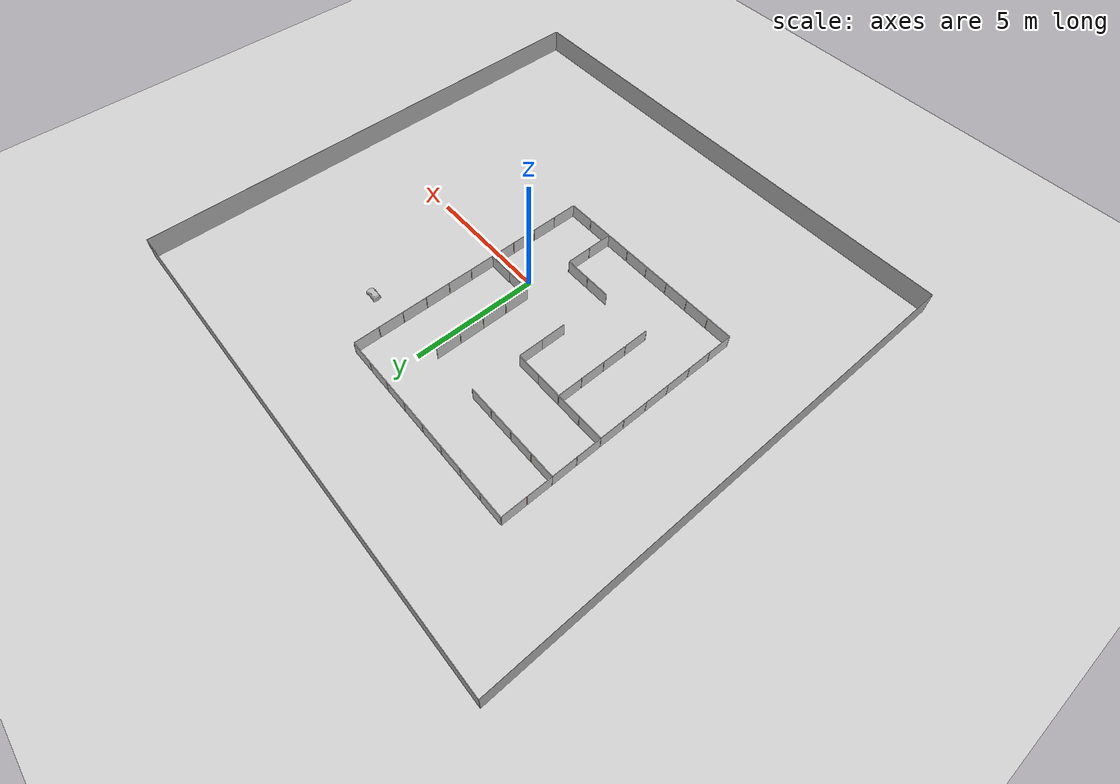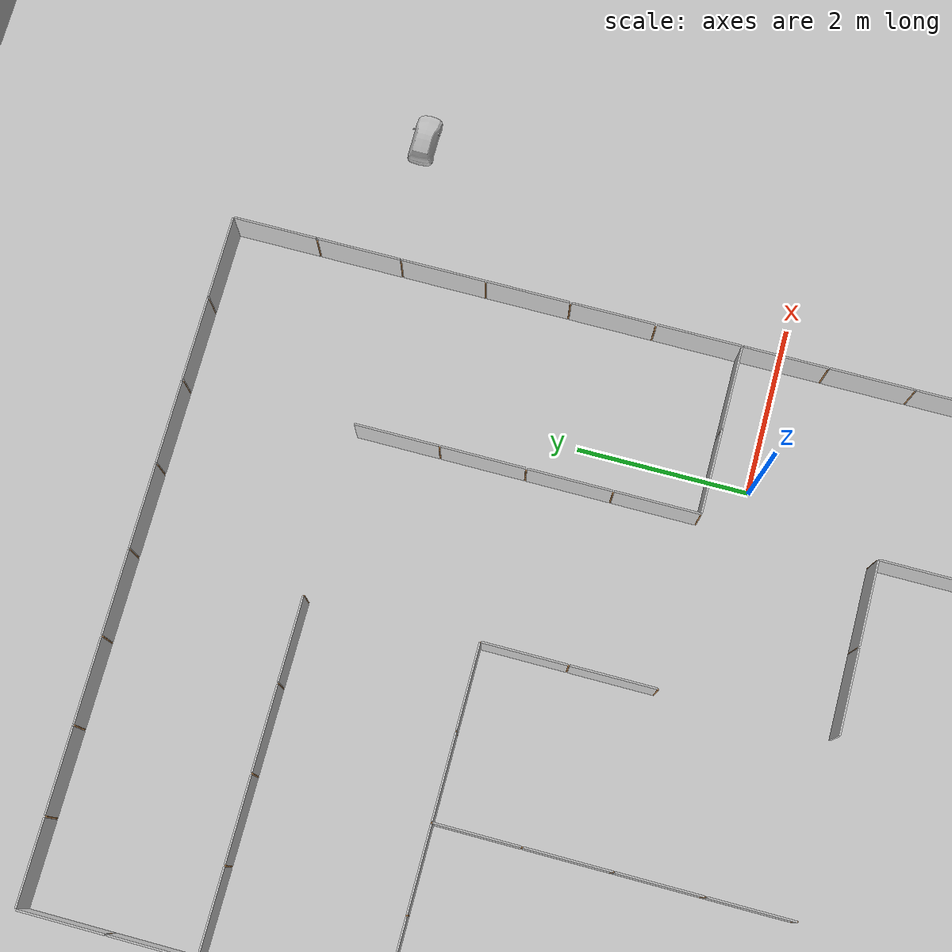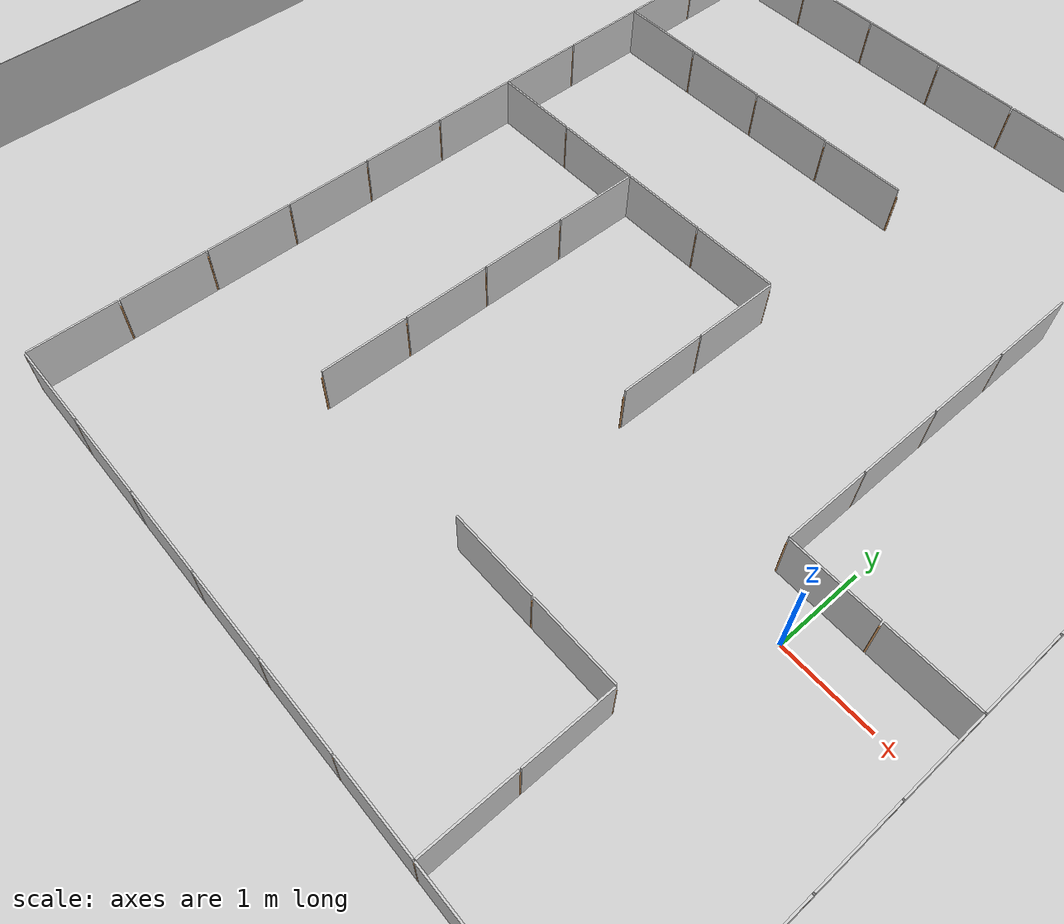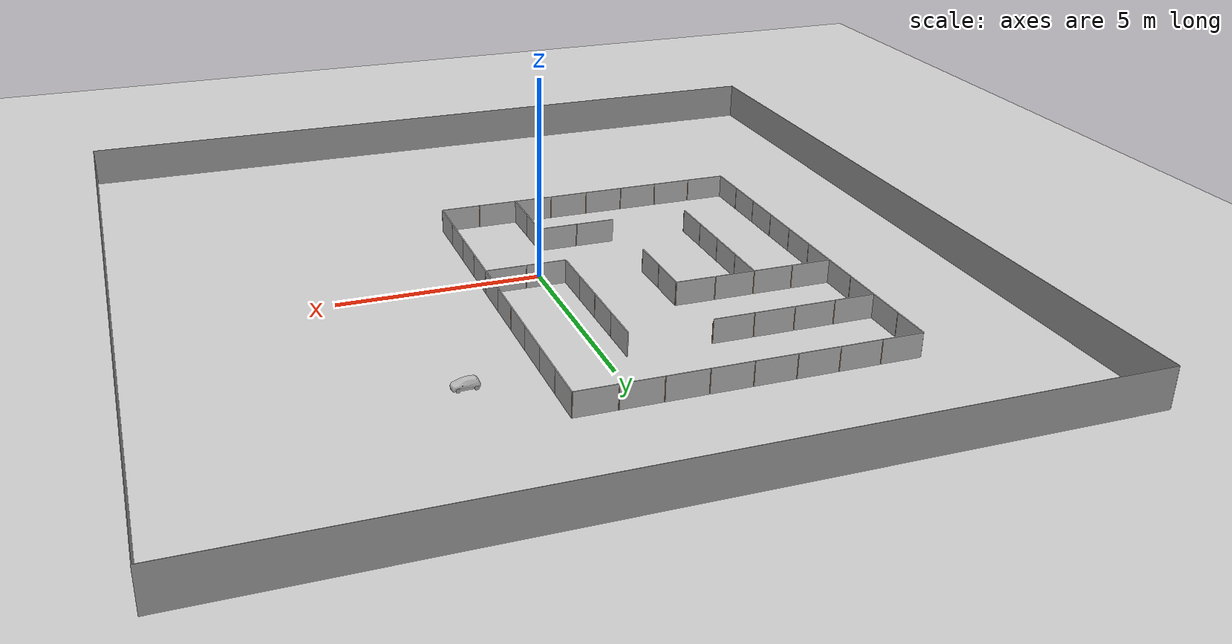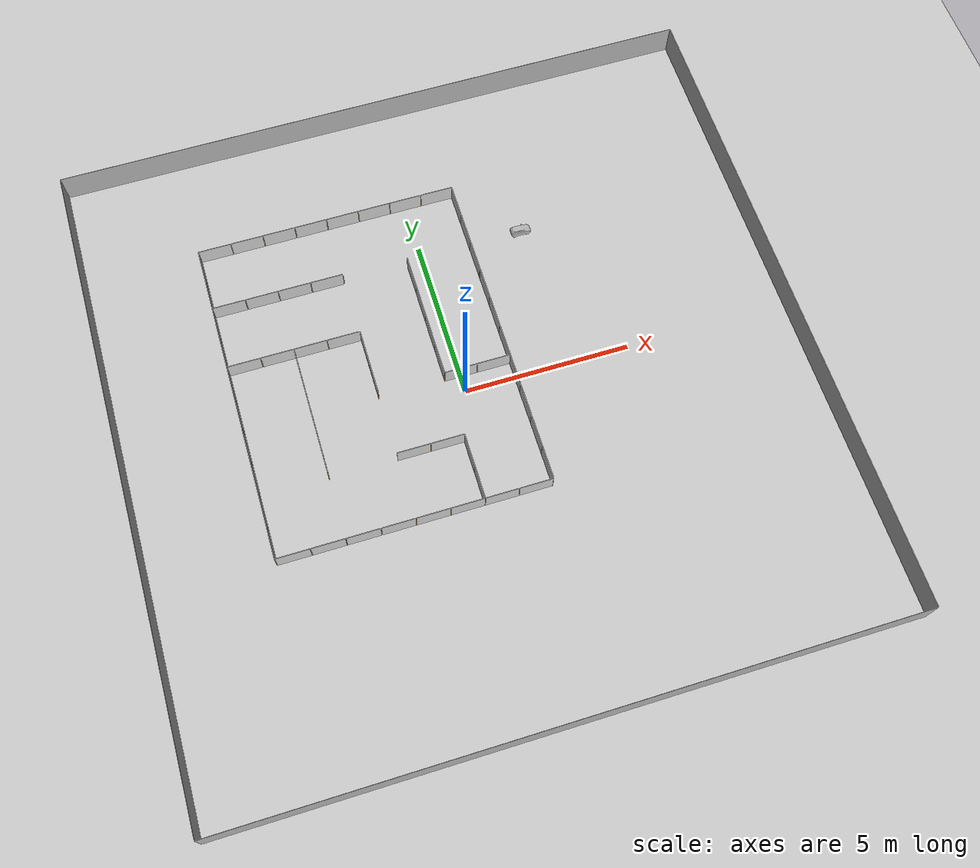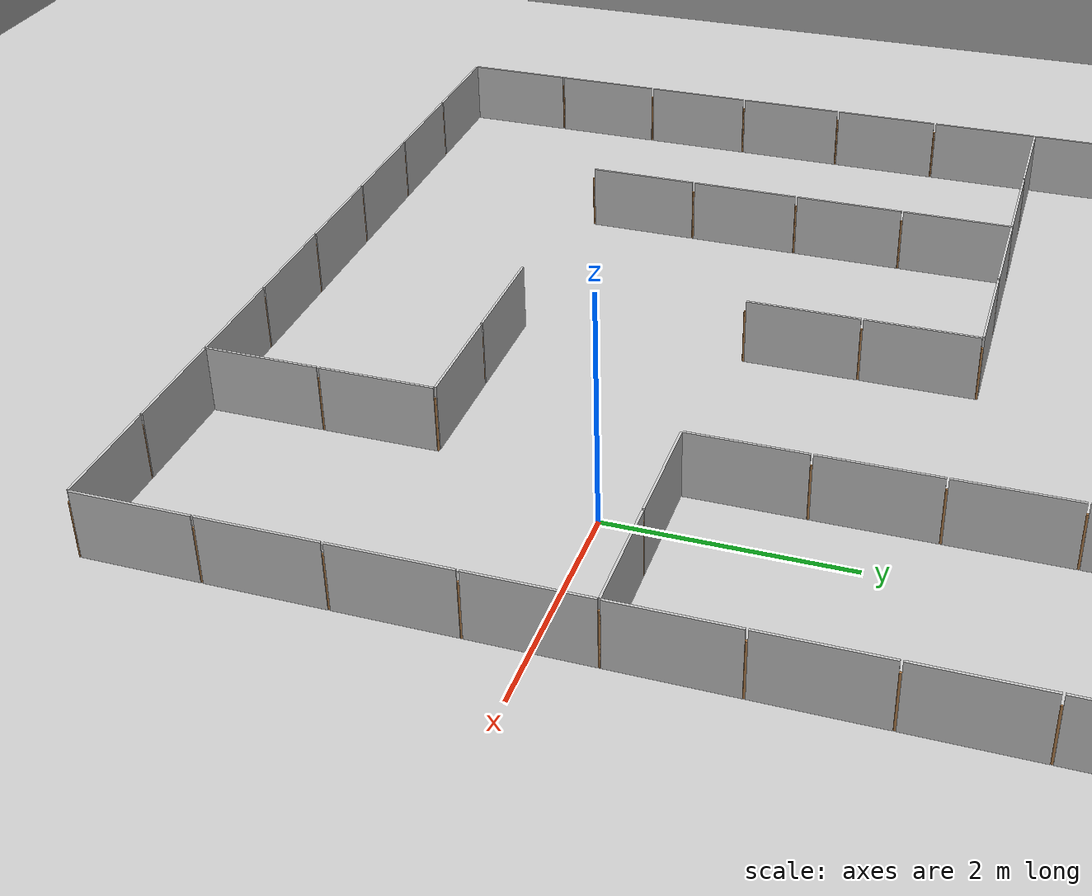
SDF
<sdf version="1.10">
 <world name="default">
  <physics type="ode">
   <max_step_size>0.0040000000000000001</max_step_size>
   <real_time_factor>1</real_time_factor>
   <real_time_update_rate>250</real_time_update_rate>
  </physics>
  <plugin name="gz::sim::systems::Physics" filename="gz-sim-physics-system"/>
  <plugin name="gz::sim::systems::UserCommands" filename="gz-sim-user-commands-system"/>
  <plugin name="gz::sim::systems::SceneBroadcaster" filename="gz-sim-scene-broadcaster-system"/>
  <plugin name="gz::sim::systems::Contact" filename="gz-sim-contact-system"/>
  <plugin name="gz::sim::systems::Imu" filename="gz-sim-imu-system"/>
  <plugin name="gz::sim::systems::Magnetometer" filename="gz-sim-magnetometer-system"/>
  <plugin name="gz::sim::systems::Altimeter" filename="gz-sim-altimeter-system"/>
  <plugin name="gz::sim::systems::NavSat" filename="gz-sim-navsat-system"/>
  <plugin name="gz::sim::systems::Sensors" filename="gz-sim-sensors-system">
   <render_engine>ogre2</render_engine>
  </plugin>
  <gravity>0 0 -9.8000000000000007</gravity>
  <magnetic_field>6.0000000000000002e-06 2.3e-05 -4.1999999999999998e-05</magnetic_field>
  <atmosphere type="adiabatic"/>
  <spherical_coordinates>
   <surface_model>EARTH_WGS84</surface_model>
   <latitude_deg>39.79480109851339</latitude_deg>
   <longitude_deg>-84.08631702793322</longitude_deg>
   <elevation>265.2</elevation>
   <heading_deg>0</heading_deg>
  </spherical_coordinates>
  <scene>
   <grid>true</grid>
   <ambient>0.400000006 0.400000006 0.400000006 1</ambient>
   <background>0.699999988 0.699999988 0.699999988 1</background>
   <shadows>false</shadows>
  </scene>
  <light name="sunUTC" type="directional">
   <pose>0 0 500 0 0 0</pose>
   <cast_shadows>false</cast_shadows>
   <intensity>1</intensity>
   <direction>0.001 0.625 -0.78000000000000003</direction>
   <diffuse>0.903999984 0.903999984 0.903999984 1</diffuse>
   <specular>0.270999998 0.270999998 0.270999998 1</specular>
   <attenuation><range>2000</range><linear>0</linear><constant>1</constant><quadratic>0</quadratic></attenuation>
   <spot><inner_angle>0</inner_angle><outer_angle>0</outer_angle><falloff>0</falloff></spot>
  </light>
  <model name="ground_plane">
   <static>true</static>
   <link name="link">
    <collision name="collision">
     <geometry><plane><normal>0 0 1</normal><size>1 1</size></plane></geometry>
    </collision>
    <visual name="visual">
     <geometry><plane><normal>0 0 1</normal><size>100 100</size></plane></geometry>
     <material>
      <ambient>0.800000012 0.800000012 0.800000012 1</ambient>
      <diffuse>0.800000012 0.800000012 0.800000012 1</diffuse>
      <specular>0.800000012 0.800000012 0.800000012 1</specular>
     </material>
    </visual>
    <inertial>
     <mass>1</mass>
     <inertia><ixx>1</ixx><ixy>0</ixy><ixz>0</ixz><iyy>1</iyy><iyz>0</iyz><izz>1</izz></inertia>
    </inertial>
   </link>
  </model>
  <model name="wall_1">
   <pose>-10 0 .5 0 0 -1.57</pose>
   <static>true</static>
   <link name="link">
    <collision name="collision"><geometry><box><size>20 .01 1</size></box></geometry></collision>
    <visual name="visual">
     <geometry><box><size>20 .01 1</size></box></geometry>
     <material>
      <ambient>0.7 0.7 0.7 1</ambient>
      <diffuse>0.7 0.7 0.7 1</diffuse>
      <specular>0.7 0.7 0.7 1</specular>
     </material>
    </visual>
    <inertial>
     <mass>1</mass>
     <inertia><ixx>1</ixx><ixy>0</ixy><ixz>0</ixz><iyy>1</iyy><iyz>0</iyz><izz>1</izz></inertia>
    </inertial>
   </link>
  </model>
  <model name="wall_2">
   <pose>10 0 .5 0 0 -1.57</pose>
   <static>true</static>
   <link name="link">
    <collision name="collision"><geometry><box><size>20 .01 1</size></box></geometry></collision>
    <visual name="visual">
     <geometry><box><size>20 .01 1</size></box></geometry>
     <material>
      <ambient>0.7 0.7 0.7 1</ambient>
      <diffuse>0.7 0.7 0.7 1</diffuse>
      <specular>0.7 0.7 0.7 1</specular>
     </material>
    </visual>
    <inertial>
     <mass>1</mass>
     <inertia><ixx>1</ixx><ixy>0</ixy><ixz>0</ixz><iyy>1</iyy><iyz>0</iyz><izz>1</izz></inertia>
    </inertial>
   </link>
  </model>
  <model name="wall_3">
   <pose>0 10 .5 0 0 0</pose>
   <static>true</static>
   <link name="link">
    <collision name="collision"><geometry><box><size>20 .01 1</size></box></geometry></collision>
    <visual name="visual">
     <geometry><box><size>20 .01 1</size></box></geometry>
     <material>
      <ambient>0.7 0.7 0.7 1</ambient>
      <diffuse>0.7 0.7 0.7 1</diffuse>
      <specular>0.7 0.7 0.7 1</specular>
     </material>
    </visual>
    <inertial>
     <mass>1</mass>
     <inertia><ixx>1</ixx><ixy>0</ixy><ixz>0</ixz><iyy>1</iyy><iyz>0</iyz><izz>1</izz></inertia>
    </inertial>
   </link>
  </model>
  <model name="wall_4">
   <pose>0 -10 .5 0 0 0</pose>
   <static>true</static>
   <link name="link">
    <collision name="collision"><geometry><box><size>20 .01 1</size></box></geometry></collision>
    <visual name="visual">
     <geometry><box><size>20 .01 1</size></box></geometry>
     <material>
      <ambient>0.7 0.7 0.7 1</ambient>
      <diffuse>0.7 0.7 0.7 1</diffuse>
      <specular>0.7 0.7 0.7 1</specular>
     </material>
    </visual>
    <inertial>
     <mass>1</mass>
     <inertia><ixx>1</ixx><ixy>0</ixy><ixz>0</ixz><iyy>1</iyy><iyz>0</iyz><izz>1</izz></inertia>
    </inertial>
   </link>
  </model>
  <include>
   <uri>/home/mayank/cognipilot/cranium/src/dream_world/models/maze_1_6x5</uri>
   <pose>-1.5 2.5 0 0 0 -1.57079632679</pose>
  </include>
  <include>
   <uri>/home/mayank/cognipilot/cranium/src/dream_world/models/hatchback_red</uri>
   <name>car_7</name>
   <pose>3.127710 4.690750 0 0 0 0</pose>
  </include>
 </world>
</sdf>

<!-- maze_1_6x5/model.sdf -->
<sdf version="1.5">
    <model name="maze_1_6x5">

        <include>
            <name>plywood_panel_0_0_b_1</name>
            <uri>/home/mayank/cognipilot/cranium/src/dream_world/models/plywood_panel</uri>
            <pose>-2 -2 0 0 0 0</pose>
        </include>
        <include>
            <name>wooden_joint_0_0_b_1</name>
            <uri>/home/mayank/cognipilot/cranium/src/dream_world/models/wooden_joint</uri>
            <pose>-2 -2 0 0 0 0</pose>
        </include>

        <include>
            <name>plywood_panel_0_0_b_2</name>
            <uri>/home/mayank/cognipilot/cranium/src/dream_world/models/plywood_panel</uri>
            <pose>-2 -3 0 0 0 0</pose>
        </include>
        <include>
            <name>wooden_joint_0_0_b_2</name>
            <uri>/home/mayank/cognipilot/cranium/src/dream_world/models/wooden_joint</uri>
            <pose>-2 -3 0 0 0 0</pose>
        </include>

        <include>
            <name>plywood_panel_0_0_b_3</name>
            <uri>/home/mayank/cognipilot/cranium/src/dream_world/models/plywood_panel</uri>
            <pose>-2 -4 0 0 0 0</pose>
        </include>
        <include>
            <name>wooden_joint_0_0_b_3</name>
            <uri>/home/mayank/cognipilot/cranium/src/dream_world/models/wooden_joint</uri>
            <pose>-2 -4 0 0 0 0</pose>
        </include>

        <include>
            <name>plywood_panel_0_0_b_4</name>
            <uri>/home/mayank/cognipilot/cranium/src/dream_world/models/plywood_panel</uri>
            <pose>0 -5 0 0 0 -1.5708</pose>
        </include>
        <include>
            <name>wooden_joint_0_0_b_4</name>
            <uri>/home/mayank/cognipilot/cranium/src/dream_world/models/wooden_joint</uri>
            <pose>0 -5 0 0 0 -1.5708</pose>
        </include>

        <include>
            <name>plywood_panel_0_0_b_5</name>
            <uri>/home/mayank/cognipilot/cranium/src/dream_world/models/plywood_panel</uri>
            <pose>1 -5 0 0 0 -1.5708</pose>
        </include>
        <include>
            <name>wooden_joint_0_0_b_5</name>
            <uri>/home/mayank/cognipilot/cranium/src/dream_world/models/wooden_joint</uri>
            <pose>1 -5 0 0 0 -1.5708</pose>
        </include>

        <include>
            <name>plywood_panel_0_0_b_6</name>
            <uri>/home/mayank/cognipilot/cranium/src/dream_world/models/plywood_panel</uri>
            <pose>2 -5 0 0 0 -1.5708</pose>
        </include>
        <include>
            <name>wooden_joint_0_0_b_6</name>
            <uri>/home/mayank/cognipilot/cranium/src/dream_world/models/wooden_joint</uri>
            <pose>2 -5 0 0 0 -1.5708</pose>
        </include>

        <include>
            <name>plywood_panel_0_0_b_7</name>
            <uri>/home/mayank/cognipilot/cranium/src/dream_world/models/plywood_panel</uri>
            <pose>-2 -5 0 0 0 -1.5708</pose>
        </include>
        <include>
            <name>wooden_joint_0_0_b_7</name>
            <uri>/home/mayank/cognipilot/cranium/src/dream_world/models/wooden_joint</uri>
            <pose>-2 -5 0 0 0 -1.5708</pose>
        </include>

        <include>
            <name>plywood_panel_0_0_b_8</name>
            <uri>/home/mayank/cognipilot/cranium/src/dream_world/models/plywood_panel</uri>
            <pose>-3 -5 0 0 0 -1.5708</pose>
        </include>
        <include>
            <name>wooden_joint_0_0_b_8</name>
            <uri>/home/mayank/cognipilot/cranium/src/dream_world/models/wooden_joint</uri>
            <pose>-3 -5 0 0 0 -1.5708</pose>
        </include>

        <include>
            <name>plywood_panel_0_0_b_9</name>
            <uri>/home/mayank/cognipilot/cranium/src/dream_world/models/plywood_panel</uri>
            <pose>3 -5 0 0 0 -1.5708</pose>
        </include>
        <include>
            <name>wooden_joint_0_0_b_9</name>
            <uri>/home/mayank/cognipilot/cranium/src/dream_world/models/wooden_joint</uri>
            <pose>3 -5 0 0 0 -1.5708</pose>
        </include>

        <include>
            <name>plywood_panel_0_0_b_10</name>
            <uri>/home/mayank/cognipilot/cranium/src/dream_world/models/plywood_panel</uri>
            <pose>0 -4 0 0 0 0</pose>
        </include>
        <include>
            <name>wooden_joint_0_0_b_10</name>
            <uri>/home/mayank/cognipilot/cranium/src/dream_world/models/wooden_joint</uri>
            <pose>0 -4 0 0 0 0</pose>
        </include>

        <include>
            <name>plywood_panel_0_0_b_11</name>
            <uri>/home/mayank/cognipilot/cranium/src/dream_world/models/plywood_panel</uri>
            <pose>0 -3 0 0 0 0</pose>
        </include>
        <include>
            <name>wooden_joint_0_0_b_11</name>
            <uri>/home/mayank/cognipilot/cranium/src/dream_world/models/wooden_joint</uri>
            <pose>0 -3 0 0 0 0</pose>
        </include>

        <include>
            <name>plywood_panel_0_0_b_12</name>
            <uri>/home/mayank/cognipilot/cranium/src/dream_world/models/plywood_panel</uri>
            <pose>0 -2 0 0 0 0</pose>
        </include>
        <include>
            <name>wooden_joint_0_0_b_12</name>
            <uri>/home/mayank/cognipilot/cranium/src/dream_world/models/wooden_joint</uri>
            <pose>0 -2 0 0 0 0</pose>
        </include>

        <include>
            <name>plywood_panel_0_0_b_13</name>
            <uri>/home/mayank/cognipilot/cranium/src/dream_world/models/plywood_panel</uri>
            <pose>1 -3 0 0 0 -1.5708</pose>
        </include>
        <include>
            <name>wooden_joint_0_0_b_13</name>
            <uri>/home/mayank/cognipilot/cranium/src/dream_world/models/wooden_joint</uri>
            <pose>1 -3 0 0 0 -1.5708</pose>
        </include>

        <include>
            <name>plywood_panel_0_0_b_14</name>
            <uri>/home/mayank/cognipilot/cranium/src/dream_world/models/plywood_panel</uri>
            <pose>2 -3 0 0 0 -1.5708</pose>
        </include>
        <include>
            <name>wooden_joint_0_0_b_14</name>
            <uri>/home/mayank/cognipilot/cranium/src/dream_world/models/wooden_joint</uri>
            <pose>2 -3 0 0 0 -1.5708</pose>
        </include>

        <include>
            <name>plywood_panel_0_0_b_15</name>
            <uri>/home/mayank/cognipilot/cranium/src/dream_world/models/plywood_panel</uri>
            <pose>3 -3 0 0 0 -1.5708</pose>
        </include>
        <include>
            <name>wooden_joint_0_0_b_15</name>
            <uri>/home/mayank/cognipilot/cranium/src/dream_world/models/wooden_joint</uri>
            <pose>3 -3 0 0 0 -1.5708</pose>
        </include>

        <include>
            <name>plywood_panel_0_0_b_16</name>
            <uri>/home/mayank/cognipilot/cranium/src/dream_world/models/plywood_panel</uri>
            <pose>4 -5 0 0 0 -1.5708</pose>
        </include>
        <include>
            <name>wooden_joint_0_0_b_16</name>
            <uri>/home/mayank/cognipilot/cranium/src/dream_world/models/wooden_joint</uri>
            <pose>4 -5 0 0 0 -1.5708</pose>
        </include>

        <include>
            <name>plywood_panel_0_0_b_17</name>
            <uri>/home/mayank/cognipilot/cranium/src/dream_world/models/plywood_panel</uri>
            <pose>5 -5 0 0 0 -1.5708</pose>
        </include>
        <include>
            <name>wooden_joint_0_0_b_17</name>
            <uri>/home/mayank/cognipilot/cranium/src/dream_world/models/wooden_joint</uri>
            <pose>5 -5 0 0 0 -1.5708</pose>
        </include>

        <include>
            <name>plywood_panel_0_0_b_18</name>
            <uri>/home/mayank/cognipilot/cranium/src/dream_world/models/plywood_panel</uri>
            <pose>6 -5 0 0 0 -1.5708</pose>
        </include>
        <include>
            <name>wooden_joint_0_0_b_18</name>
            <uri>/home/mayank/cognipilot/cranium/src/dream_world/models/wooden_joint</uri>
            <pose>6 -5 0 0 0 -1.5708</pose>
        </include>

        <include>
            <name>plywood_panel_0_0_b_19</name>
            <uri>/home/mayank/cognipilot/cranium/src/dream_world/models/plywood_panel</uri>
            <pose>0 1 0 0 0 -1.5708</pose>
        </include>
        <include>
            <name>wooden_joint_0_0_b_19</name>
            <uri>/home/mayank/cognipilot/cranium/src/dream_world/models/wooden_joint</uri>
            <pose>0 1 0 0 0 -1.5708</pose>
        </include>

        <include>
            <name>plywood_panel_0_0_b_20</name>
            <uri>/home/mayank/cognipilot/cranium/src/dream_world/models/plywood_panel</uri>
            <pose>1 -1 0 0 0 -1.5708</pose>
        </include>
        <include>
            <name>wooden_joint_0_0_b_20</name>
            <uri>/home/mayank/cognipilot/cranium/src/dream_world/models/wooden_joint</uri>
            <pose>1 -1 0 0 0 -1.5708</pose>
        </include>

        <include>
            <name>plywood_panel_0_0_b_21</name>
            <uri>/home/mayank/cognipilot/cranium/src/dream_world/models/plywood_panel</uri>
            <pose>2 -1 0 0 0 -1.5708</pose>
        </include>
        <include>
            <name>wooden_joint_0_0_b_21</name>
            <uri>/home/mayank/cognipilot/cranium/src/dream_world/models/wooden_joint</uri>
            <pose>2 -1 0 0 0 -1.5708</pose>
        </include>

        <include>
            <name>plywood_panel_0_0_b_22</name>
            <uri>/home/mayank/cognipilot/cranium/src/dream_world/models/plywood_panel</uri>
            <pose>4 -3 0 0 0 -1.5708</pose>
        </include>
        <include>
            <name>wooden_joint_0_0_b_22</name>
            <uri>/home/mayank/cognipilot/cranium/src/dream_world/models/wooden_joint</uri>
            <pose>4 -3 0 0 0 -1.5708</pose>
        </include>

        <include>
            <name>plywood_panel_0_0_b_23</name>
            <uri>/home/mayank/cognipilot/cranium/src/dream_world/models/plywood_panel</uri>
            <pose>-1 1 0 0 0 -1.5708</pose>
        </include>
        <include>
            <name>wooden_joint_0_0_b_23</name>
            <uri>/home/mayank/cognipilot/cranium/src/dream_world/models/wooden_joint</uri>
            <pose>-1 1 0 0 0 -1.5708</pose>
        </include>

        <include>
            <name>plywood_panel_0_0_b_24</name>
            <uri>/home/mayank/cognipilot/cranium/src/dream_world/models/plywood_panel</uri>
            <pose>-1 -5 0 0 0 -1.5708</pose>
        </include>
        <include>
            <name>wooden_joint_0_0_b_24</name>
            <uri>/home/mayank/cognipilot/cranium/src/dream_world/models/wooden_joint</uri>
            <pose>-1 -5 0 0 0 -1.5708</pose>
        </include>

        <include>
            <name>plywood_panel_0_0_b_25</name>
            <uri>/home/mayank/cognipilot/cranium/src/dream_world/models/plywood_panel</uri>
            <pose>1 1 0 0 0 -1.5708</pose>
        </include>
        <include>
            <name>wooden_joint_0_0_b_25</name>
            <uri>/home/mayank/cognipilot/cranium/src/dream_world/models/wooden_joint</uri>
            <pose>1 1 0 0 0 -1.5708</pose>
        </include>

        <include>
            <name>plywood_panel_0_0_b_26</name>
            <uri>/home/mayank/cognipilot/cranium/src/dream_world/models/plywood_panel</uri>
            <pose>-2 -1 0 0 0 0</pose>
        </include>
        <include>
            <name>wooden_joint_0_0_b_26</name>
            <uri>/home/mayank/cognipilot/cranium/src/dream_world/models/wooden_joint</uri>
            <pose>-2 -1 0 0 0 0</pose>
        </include>

        <include>
            <name>plywood_panel_0_0_b_27</name>
            <uri>/home/mayank/cognipilot/cranium/src/dream_world/models/plywood_panel</uri>
            <pose>6 -4 0 0 0 0</pose>
        </include>
        <include>
            <name>wooden_joint_0_0_b_27</name>
            <uri>/home/mayank/cognipilot/cranium/src/dream_world/models/wooden_joint</uri>
            <pose>6 -4 0 0 0 0</pose>
        </include>

        <include>
            <name>plywood_panel_0_0_b_28</name>
            <uri>/home/mayank/cognipilot/cranium/src/dream_world/models/plywood_panel</uri>
            <pose>6 -3 0 0 0 0</pose>
        </include>
        <include>
            <name>wooden_joint_0_0_b_28</name>
            <uri>/home/mayank/cognipilot/cranium/src/dream_world/models/wooden_joint</uri>
            <pose>6 -3 0 0 0 0</pose>
        </include>

        <include>
            <name>plywood_panel_0_0_b_29</name>
            <uri>/home/mayank/cognipilot/cranium/src/dream_world/models/plywood_panel</uri>
            <pose>6 -2 0 0 0 0</pose>
        </include>
        <include>
            <name>wooden_joint_0_0_b_29</name>
            <uri>/home/mayank/cognipilot/cranium/src/dream_world/models/wooden_joint</uri>
            <pose>6 -2 0 0 0 0</pose>
        </include>

        <include>
            <name>plywood_panel_0_0_b_30</name>
            <uri>/home/mayank/cognipilot/cranium/src/dream_world/models/plywood_panel</uri>
            <pose>6 -1 0 0 0 0</pose>
        </include>
        <include>
            <name>wooden_joint_0_0_b_30</name>
            <uri>/home/mayank/cognipilot/cranium/src/dream_world/models/wooden_joint</uri>
            <pose>6 -1 0 0 0 0</pose>
        </include>

        <include>
            <name>plywood_panel_0_0_b_31</name>
            <uri>/home/mayank/cognipilot/cranium/src/dream_world/models/plywood_panel</uri>
            <pose>6 0 0 0 0 0</pose>
        </include>
        <include>
            <name>wooden_joint_0_0_b_31</name>
            <uri>/home/mayank/cognipilot/cranium/src/dream_world/models/wooden_joint</uri>
            <pose>6 0 0 0 0 0</pose>
        </include>

        <include>
            <name>plywood_panel_0_0_b_32</name>
            <uri>/home/mayank/cognipilot/cranium/src/dream_world/models/plywood_panel</uri>
            <pose>6 1 0 0 0 0</pose>
        </include>
        <include>
            <name>wooden_joint_0_0_b_32</name>
            <uri>/home/mayank/cognipilot/cranium/src/dream_world/models/wooden_joint</uri>
            <pose>6 1 0 0 0 0</pose>
        </include>

        <include>
            <name>plywood_panel_0_0_b_33</name>
            <uri>/home/mayank/cognipilot/cranium/src/dream_world/models/plywood_panel</uri>
            <pose>-4 1 0 0 0 0</pose>
        </include>
        <include>
            <name>wooden_joint_0_0_b_33</name>
            <uri>/home/mayank/cognipilot/cranium/src/dream_world/models/wooden_joint</uri>
            <pose>-4 1 0 0 0 0</pose>
        </include>

        <include>
            <name>plywood_panel_0_0_b_34</name>
            <uri>/home/mayank/cognipilot/cranium/src/dream_world/models/plywood_panel</uri>
            <pose>-4 0 0 0 0 0</pose>
        </include>
        <include>
            <name>wooden_joint_0_0_b_34</name>
            <uri>/home/mayank/cognipilot/cranium/src/dream_world/models/wooden_joint</uri>
            <pose>-4 0 0 0 0 0</pose>
        </include>

        <include>
            <name>plywood_panel_0_0_b_35</name>
            <uri>/home/mayank/cognipilot/cranium/src/dream_world/models/plywood_panel</uri>
            <pose>-4 -1 0 0 0 0</pose>
        </include>
        <include>
            <name>wooden_joint_0_0_b_35</name>
            <uri>/home/mayank/cognipilot/cranium/src/dream_world/models/wooden_joint</uri>
            <pose>-4 -1 0 0 0 0</pose>
        </include>

        <include>
            <name>plywood_panel_0_0_b_36</name>
            <uri>/home/mayank/cognipilot/cranium/src/dream_world/models/plywood_panel</uri>
            <pose>-4 -2 0 0 0 0</pose>
        </include>
        <include>
            <name>wooden_joint_0_0_b_36</name>
            <uri>/home/mayank/cognipilot/cranium/src/dream_world/models/wooden_joint</uri>
            <pose>-4 -2 0 0 0 0</pose>
        </include>

        <include>
            <name>plywood_panel_0_0_b_37</name>
            <uri>/home/mayank/cognipilot/cranium/src/dream_world/models/plywood_panel</uri>
            <pose>-4 -3 0 0 0 0</pose>
        </include>
        <include>
            <name>wooden_joint_0_0_b_37</name>
            <uri>/home/mayank/cognipilot/cranium/src/dream_world/models/wooden_joint</uri>
            <pose>-4 -3 0 0 0 0</pose>
        </include>

        <include>
            <name>plywood_panel_0_0_b_38</name>
            <uri>/home/mayank/cognipilot/cranium/src/dream_world/models/plywood_panel</uri>
            <pose>-4 -4 0 0 0 0</pose>
        </include>
        <include>
            <name>wooden_joint_0_0_b_38</name>
            <uri>/home/mayank/cognipilot/cranium/src/dream_world/models/wooden_joint</uri>
            <pose>-4 -4 0 0 0 0</pose>
        </include>

        <include>
            <name>plywood_panel_0_0_b_39</name>
            <uri>/home/mayank/cognipilot/cranium/src/dream_world/models/plywood_panel</uri>
            <pose>0 -1 0 0 0 0</pose>
        </include>
        <include>
            <name>wooden_joint_0_0_b_39</name>
            <uri>/home/mayank/cognipilot/cranium/src/dream_world/models/wooden_joint</uri>
            <pose>0 -1 0 0 0 0</pose>
        </include>

        <include>
            <name>plywood_panel_0_0_b_40</name>
            <uri>/home/mayank/cognipilot/cranium/src/dream_world/models/plywood_panel</uri>
            <pose>2 1 0 0 0 -1.5708</pose>
        </include>
        <include>
            <name>wooden_joint_0_0_b_40</name>
            <uri>/home/mayank/cognipilot/cranium/src/dream_world/models/wooden_joint</uri>
            <pose>2 1 0 0 0 -1.5708</pose>
        </include>

        <include>
            <name>plywood_panel_0_0_b_41</name>
            <uri>/home/mayank/cognipilot/cranium/src/dream_world/models/plywood_panel</uri>
            <pose>5 1 0 0 0 -1.5708</pose>
        </include>
        <include>
            <name>wooden_joint_0_0_b_41</name>
            <uri>/home/mayank/cognipilot/cranium/src/dream_world/models/wooden_joint</uri>
            <pose>5 1 0 0 0 -1.5708</pose>
        </include>

        <include>
            <name>plywood_panel_0_0_b_42</name>
            <uri>/home/mayank/cognipilot/cranium/src/dream_world/models/plywood_panel</uri>
            <pose>6 1 0 0 0 -1.5708</pose>
        </include>
        <include>
            <name>wooden_joint_0_0_b_42</name>
            <uri>/home/mayank/cognipilot/cranium/src/dream_world/models/wooden_joint</uri>
            <pose>6 1 0 0 0 -1.5708</pose>
        </include>

        <include>
            <name>plywood_panel_0_0_b_43</name>
            <uri>/home/mayank/cognipilot/cranium/src/dream_world/models/plywood_panel</uri>
            <pose>4 1 0 0 0 0</pose>
        </include>
        <include>
            <name>wooden_joint_0_0_b_43</name>
            <uri>/home/mayank/cognipilot/cranium/src/dream_world/models/wooden_joint</uri>
            <pose>4 1 0 0 0 0</pose>
        </include>

        <include>
            <name>plywood_panel_0_0_b_44</name>
            <uri>/home/mayank/cognipilot/cranium/src/dream_world/models/plywood_panel</uri>
            <pose>4 0 0 0 0 0</pose>
        </include>
        <include>
            <name>wooden_joint_0_0_b_44</name>
            <uri>/home/mayank/cognipilot/cranium/src/dream_world/models/wooden_joint</uri>
            <pose>4 0 0 0 0 0</pose>
        </include>

        <include>
            <name>plywood_panel_0_0_b_45</name>
            <uri>/home/mayank/cognipilot/cranium/src/dream_world/models/plywood_panel</uri>
            <pose>6 2 0 0 0 0</pose>
        </include>
        <include>
            <name>wooden_joint_0_0_b_45</name>
            <uri>/home/mayank/cognipilot/cranium/src/dream_world/models/wooden_joint</uri>
            <pose>6 2 0 0 0 0</pose>
        </include>

        <include>
            <name>plywood_panel_0_0_b_46</name>
            <uri>/home/mayank/cognipilot/cranium/src/dream_world/models/plywood_panel</uri>
            <pose>6 3 0 0 0 0</pose>
        </include>
        <include>
            <name>wooden_joint_0_0_b_46</name>
            <uri>/home/mayank/cognipilot/cranium/src/dream_world/models/wooden_joint</uri>
            <pose>6 3 0 0 0 0</pose>
        </include>

        <include>
            <name>plywood_panel_0_0_b_47</name>
            <uri>/home/mayank/cognipilot/cranium/src/dream_world/models/plywood_panel</uri>
            <pose>-4 2 0 0 0 0</pose>
        </include>
        <include>
            <name>wooden_joint_0_0_b_47</name>
            <uri>/home/mayank/cognipilot/cranium/src/dream_world/models/wooden_joint</uri>
            <pose>-4 2 0 0 0 0</pose>
        </include>

        <include>
            <name>plywood_panel_0_0_b_48</name>
            <uri>/home/mayank/cognipilot/cranium/src/dream_world/models/plywood_panel</uri>
            <pose>-4 3 0 0 0 0</pose>
        </include>
        <include>
            <name>wooden_joint_0_0_b_48</name>
            <uri>/home/mayank/cognipilot/cranium/src/dream_world/models/wooden_joint</uri>
            <pose>-4 3 0 0 0 0</pose>
        </include>

        <include>
            <name>plywood_panel_0_0_b_49</name>
            <uri>/home/mayank/cognipilot/cranium/src/dream_world/models/plywood_panel</uri>
            <pose>-3 3 0 0 0 -1.5708</pose>
        </include>
        <include>
            <name>wooden_joint_0_0_b_49</name>
            <uri>/home/mayank/cognipilot/cranium/src/dream_world/models/wooden_joint</uri>
            <pose>-3 3 0 0 0 -1.5708</pose>
        </include>

        <include>
            <name>plywood_panel_0_0_b_50</name>
            <uri>/home/mayank/cognipilot/cranium/src/dream_world/models/plywood_panel</uri>
            <pose>-2 3 0 0 0 -1.5708</pose>
        </include>
        <include>
            <name>wooden_joint_0_0_b_50</name>
            <uri>/home/mayank/cognipilot/cranium/src/dream_world/models/wooden_joint</uri>
            <pose>-2 3 0 0 0 -1.5708</pose>
        </include>

        <include>
            <name>plywood_panel_0_0_b_51</name>
            <uri>/home/mayank/cognipilot/cranium/src/dream_world/models/plywood_panel</uri>
            <pose>-1 3 0 0 0 -1.5708</pose>
        </include>
        <include>
            <name>wooden_joint_0_0_b_51</name>
            <uri>/home/mayank/cognipilot/cranium/src/dream_world/models/wooden_joint</uri>
            <pose>-1 3 0 0 0 -1.5708</pose>
        </include>

        <include>
            <name>plywood_panel_0_0_b_52</name>
            <uri>/home/mayank/cognipilot/cranium/src/dream_world/models/plywood_panel</uri>
            <pose>0 3 0 0 0 -1.5708</pose>
        </include>
        <include>
            <name>wooden_joint_0_0_b_52</name>
            <uri>/home/mayank/cognipilot/cranium/src/dream_world/models/wooden_joint</uri>
            <pose>0 3 0 0 0 -1.5708</pose>
        </include>

        <include>
            <name>plywood_panel_0_0_b_53</name>
            <uri>/home/mayank/cognipilot/cranium/src/dream_world/models/plywood_panel</uri>
            <pose>1 3 0 0 0 -1.5708</pose>
        </include>
        <include>
            <name>wooden_joint_0_0_b_53</name>
            <uri>/home/mayank/cognipilot/cranium/src/dream_world/models/wooden_joint</uri>
            <pose>1 3 0 0 0 -1.5708</pose>
        </include>

        <include>
            <name>plywood_panel_0_0_b_54</name>
            <uri>/home/mayank/cognipilot/cranium/src/dream_world/models/plywood_panel</uri>
            <pose>2 3 0 0 0 -1.5708</pose>
        </include>
        <include>
            <name>wooden_joint_0_0_b_54</name>
            <uri>/home/mayank/cognipilot/cranium/src/dream_world/models/wooden_joint</uri>
            <pose>2 3 0 0 0 -1.5708</pose>
        </include>

        <include>
            <name>plywood_panel_0_0_b_55</name>
            <uri>/home/mayank/cognipilot/cranium/src/dream_world/models/plywood_panel</uri>
            <pose>2 3 0 0 0 0</pose>
        </include>
        <include>
            <name>wooden_joint_0_0_b_55</name>
            <uri>/home/mayank/cognipilot/cranium/src/dream_world/models/wooden_joint</uri>
            <pose>2 3 0 0 0 0</pose>
        </include>

        <include>
            <name>plywood_panel_0_0_b_56</name>
            <uri>/home/mayank/cognipilot/cranium/src/dream_world/models/plywood_panel</uri>
            <pose>2 2 0 0 0 0</pose>
        </include>
        <include>
            <name>wooden_joint_0_0_b_56</name>
            <uri>/home/mayank/cognipilot/cranium/src/dream_world/models/wooden_joint</uri>
            <pose>2 2 0 0 0 0</pose>
        </include>

        <include>
            <name>plywood_panel_0_0_b_57</name>
            <uri>/home/mayank/cognipilot/cranium/src/dream_world/models/plywood_panel</uri>
            <pose>3 3 0 0 0 -1.5708</pose>
        </include>
        <include>
            <name>wooden_joint_0_0_b_57</name>
            <uri>/home/mayank/cognipilot/cranium/src/dream_world/models/wooden_joint</uri>
            <pose>3 3 0 0 0 -1.5708</pose>
        </include>

        <include>
            <name>plywood_panel_0_0_b_58</name>
            <uri>/home/mayank/cognipilot/cranium/src/dream_world/models/plywood_panel</uri>
            <pose>4 3 0 0 0 -1.5708</pose>
        </include>
        <include>
            <name>wooden_joint_0_0_b_58</name>
            <uri>/home/mayank/cognipilot/cranium/src/dream_world/models/wooden_joint</uri>
            <pose>4 3 0 0 0 -1.5708</pose>
        </include>

        <include>
            <name>plywood_panel_0_0_b_59</name>
            <uri>/home/mayank/cognipilot/cranium/src/dream_world/models/plywood_panel</uri>
            <pose>5 3 0 0 0 -1.5708</pose>
        </include>
        <include>
            <name>wooden_joint_0_0_b_59</name>
            <uri>/home/mayank/cognipilot/cranium/src/dream_world/models/wooden_joint</uri>
            <pose>5 3 0 0 0 -1.5708</pose>
        </include>

        <include>
            <name>plywood_panel_0_0_b_60</name>
            <uri>/home/mayank/cognipilot/cranium/src/dream_world/models/plywood_panel</uri>
            <pose>6 3 0 0 0 -1.5708</pose>
        </include>
        <include>
            <name>wooden_joint_0_0_b_60</name>
            <uri>/home/mayank/cognipilot/cranium/src/dream_world/models/wooden_joint</uri>
            <pose>6 3 0 0 0 -1.5708</pose>
        </include>

    </model>
</sdf>

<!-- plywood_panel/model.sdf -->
<sdf version="1.4">
    <model name="plywood_panel">
        <static>true</static>

        <link name="main">
            <pose>0 0 0 0 0 0</pose>
            <collision name="collision">
                <pose>0.0 -0.5 0.3 -1.571 0 -1.571</pose>
                <geometry>
                    <box>
                        <size>0.98 0.6 0.02</size>
                    </box>
                </geometry>
            </collision>

            <visual name="visual">
                <!-- offset origin to align to the center of one grid edge and rotate to vertical position -->
                <pose>0.01 -0.01 0 0 -1.571 0</pose>
                <geometry>
                    <mesh>
                        <scale>1.0 1.0 1.0</scale>
                        <!-- measures 0.98 x 0.6 x 0.02 mt, origin is at one corner of the panel -->
                        <uri>/home/mayank/cognipilot/cranium/src/dream_world/models/plywood_panel/meshes/plywood.dae</uri>
                    </mesh>
                </geometry>
            </visual>
        </link>

    </model>
</sdf>

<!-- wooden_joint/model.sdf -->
<sdf version='1.6'>
  <model name='wooden_joint'>
    <link name='link_0'>
      <pose>0 0 0.25 0 -0 0</pose>
      <inertial>
        <mass>0.00215981</mass>
        <inertia>
          <ixx>0.00018028</ixx>
          <ixy>0</ixy>
          <ixz>0</ixz>
          <iyy>0.00018028</iyy>
          <iyz>0</iyz>
          <izz>5.8e-07</izz>
        </inertia>
        <pose>0 0 0 0 -0 0</pose>
      </inertial>
      <gravity>1</gravity>
      <self_collide>0</self_collide>
      <kinematic>0</kinematic>
      <visual name='visual'>
        <pose>0 0 0 0 -0 0</pose>
        <geometry>
          <cylinder>
            <radius>0.01</radius>
            <length>0.5</length>
          </cylinder>
        </geometry>
        <material>
          <lighting>1</lighting>
          <script>
            <uri>file://media/materials/scripts/gazebo.material</uri>
            <name>Gazebo/Wood</name>
          </script>
          <shader type='pixel'>
            <normal_map>__default__</normal_map>
          </shader>
          <ambient>0.3 0.3 0.3 1</ambient>
          <diffuse>0.7 0.7 0.7 1</diffuse>
          <specular>0.01 0.01 0.01 1</specular>
          <emissive>0 0 0 1</emissive>
        </material>
        <transparency>0</transparency>
        <cast_shadows>1</cast_shadows>
      </visual>
      <collision name='collision'>
        <laser_retro>0</laser_retro>
        <max_contacts>10</max_contacts>
        <pose>0 0 0 0 -0 0</pose>
        <geometry>
          <cylinder>
            <radius>0.01</radius>
            <length>0.5</length>
          </cylinder>
        </geometry>
        <surface>
          <friction>
            <ode>
              <mu>1</mu>
              <mu2>1</mu2>
              <fdir1>0 0 0</fdir1>
              <slip1>0</slip1>
              <slip2>0</slip2>
            </ode>
            <torsional>
              <coefficient>1</coefficient>
              <patch_radius>0</patch_radius>
              <surface_radius>0</surface_radius>
              <use_patch_radius>1</use_patch_radius>
              <ode>
                <slip>0</slip>
              </ode>
            </torsional>
          </friction>
          <bounce>
            <restitution_coefficient>0</restitution_coefficient>
            <threshold>1e+06</threshold>
          </bounce>
          <contact>
            <collide_without_contact>0</collide_without_contact>
            <collide_without_contact_bitmask>1</collide_without_contact_bitmask>
            <collide_bitmask>1</collide_bitmask>
            <ode>
              <soft_cfm>0</soft_cfm>
              <soft_erp>0.2</soft_erp>
              <kp>1e+13</kp>
              <kd>1</kd>
              <max_vel>0.01</max_vel>
              <min_depth>0</min_depth>
            </ode>
            <bullet>
              <split_impulse>1</split_impulse>
              <split_impulse_penetration_threshold>-0.01</split_impulse_penetration_threshold>
              <soft_cfm>0</soft_cfm>
              <soft_erp>0.2</soft_erp>
              <kp>1e+13</kp>
              <kd>1</kd>
            </bullet>
          </contact>
        </surface>
      </collision>
    </link>
    <static>1</static>
    <allow_auto_disable>1</allow_auto_disable>
  </model>
</sdf>

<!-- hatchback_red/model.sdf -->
<sdf version="1.6">
  <model name="hatchback_red">
  <plugin filename="gz-sim-contact-system"
          name="gz::sim::systems::Contact">
    </plugin>
    <static>true</static>
    <link name="link">
      <collision name="collision">
        <pose>0 0 0 0 0 1.57079632679</pose>
        <geometry>
          <mesh>
            <scale>0.004 0.004 0.004</scale>
            <uri>meshes/hatchback_red.obj</uri>
          </mesh>
        </geometry>
      </collision>
      <visual name="visual">
        <pose>0 0 0 0 0 1.57079632679</pose>
        <geometry>
          <mesh>
            <scale>0.004 0.004 0.004</scale>
            <uri>meshes/hatchback_red.obj</uri>
          </mesh>
        </geometry>
      </visual>
      <sensor name='sensor_contact' type='contact'>
          <contact>
            <collision>collision</collision>
            <topic>/collision_detect</topic>
          </contact>
          <always_on>1</always_on>
          <update_rate>100</update_rate>
        </sensor>
    </link>
  </model>
</sdf>
